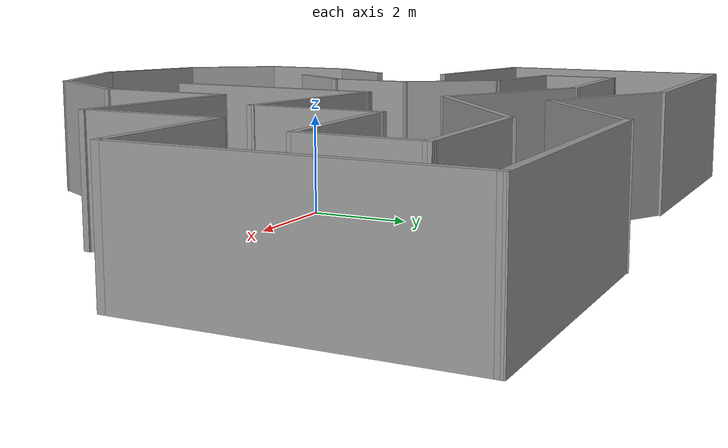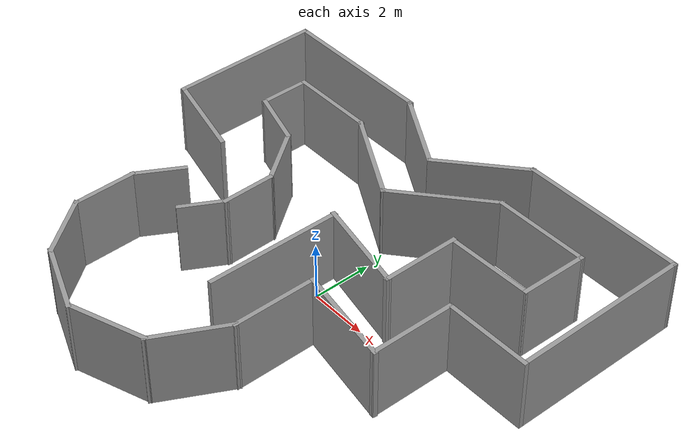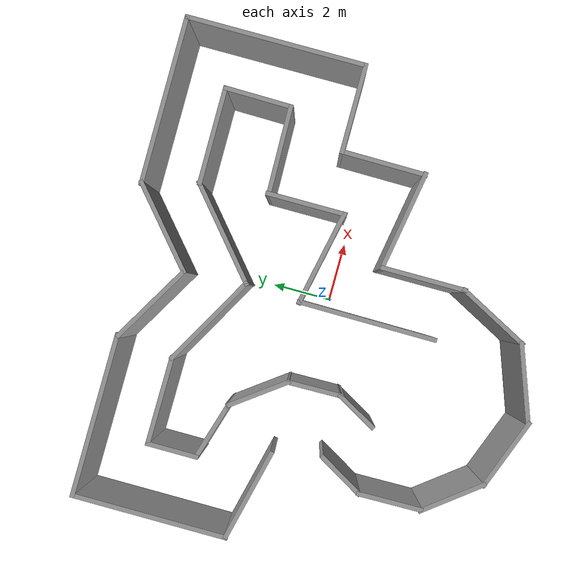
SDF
<?xml version='1.0'?>
<sdf version='1.7'>
  <model name='Muri9b'>
    <pose>-0.280337 -0.102603 0 0 -0 0</pose>
    <link name='Wall_1'>
      <collision name='Wall_1_Collision'>
        <geometry>
          <box>
            <size>2.18637 0.15 2.5</size>
          </box>
        </geometry>
        <pose>0 0 1.25 0 -0 0</pose>
      </collision>
      <visual name='Wall_1_Visual'>
        <pose>0 0 1.25 0 -0 0</pose>
        <geometry>
          <box>
            <size>2.18637 0.15 2.5</size>
          </box>
        </geometry>
        <material>
          <script>
            <uri>file://media/materials/scripts/gazebo.material</uri>
            <name>Gazebo/Grey</name>
          </script>
          <ambient>1 1 1 1</ambient>
        </material>
        <meta>
          <layer>0</layer>
        </meta>
      </visual>
      <pose>-5.42119 -3.36689 0 0 -0 -1.55773</pose>
    </link>
    <link name='Wall_11'>
      <collision name='Wall_11_Collision'>
        <geometry>
          <box>
            <size>3.05203 0.15 2.5</size>
          </box>
        </geometry>
        <pose>0 0 1.25 0 -0 0</pose>
      </collision>
      <visual name='Wall_11_Visual'>
        <pose>0 0 1.25 0 -0 0</pose>
        <geometry>
          <box>
            <size>3.05203 0.15 2.5</size>
          </box>
        </geometry>
        <material>
          <script>
            <uri>file://media/materials/scripts/gazebo.material</uri>
            <name>Gazebo/Grey</name>
          </script>
          <ambient>1 1 1 1</ambient>
        </material>
        <meta>
          <layer>0</layer>
        </meta>
      </visual>
      <pose>6.43623 1.03343 0 0 -0 0</pose>
    </link>
    <link name='Wall_12'>
      <collision name='Wall_12_Collision'>
        <geometry>
          <box>
            <size>6.09323 0.15 2.5</size>
          </box>
        </geometry>
        <pose>0 0 1.25 0 -0 0</pose>
      </collision>
      <visual name='Wall_12_Visual'>
        <pose>0 0 1.25 0 -0 0</pose>
        <geometry>
          <box>
            <size>6.09323 0.15 2.5</size>
          </box>
        </geometry>
        <material>
          <script>
            <uri>file://media/materials/scripts/gazebo.material</uri>
            <name>Gazebo/Grey</name>
          </script>
          <ambient>1 1 1 1</ambient>
        </material>
        <meta>
          <layer>0</layer>
        </meta>
      </visual>
      <pose>7.88719 4.03164 0 0 -0 1.5708</pose>
    </link>
    <link name='Wall_14'>
      <collision name='Wall_14_Collision'>
        <geometry>
          <box>
            <size>5.74746 0.15 2.5</size>
          </box>
        </geometry>
        <pose>0 0 1.25 0 -0 0</pose>
      </collision>
      <visual name='Wall_14_Visual'>
        <pose>0 0 1.25 0 -0 0</pose>
        <geometry>
          <box>
            <size>5.74746 0.15 2.5</size>
          </box>
        </geometry>
        <material>
          <script>
            <uri>file://media/materials/scripts/gazebo.material</uri>
            <name>Gazebo/Grey</name>
          </script>
          <ambient>1 1 1 1</ambient>
        </material>
        <meta>
          <layer>0</layer>
        </meta>
      </visual>
      <pose>5.0885 7.01523 0 0 -0 -3.13637</pose>
    </link>
    <link name='Wall_15'>
      <collision name='Wall_15_Collision'>
        <geometry>
          <box>
            <size>3.32382 0.15 2.5</size>
          </box>
        </geometry>
        <pose>0 0 1.25 0 -0 0</pose>
      </collision>
      <visual name='Wall_15_Visual'>
        <pose>0 0 1.25 0 -0 0</pose>
        <geometry>
          <box>
            <size>3.32382 0.15 2.5</size>
          </box>
        </geometry>
        <material>
          <script>
            <uri>file://media/materials/scripts/gazebo.material</uri>
            <name>Gazebo/Grey</name>
          </script>
          <ambient>1 1 1 1</ambient>
        </material>
        <meta>
          <layer>0</layer>
        </meta>
      </visual>
      <pose>1.11731 5.96576 0 0 -0 -2.43123</pose>
    </link>
    <link name='Wall_16'>
      <collision name='Wall_16_Collision'>
        <geometry>
          <box>
            <size>3.04857 0.15 2.5</size>
          </box>
        </geometry>
        <pose>0 0 1.25 0 -0 0</pose>
      </collision>
      <visual name='Wall_16_Visual'>
        <pose>0 0 1.25 0 -0 0</pose>
        <geometry>
          <box>
            <size>3.04857 0.15 2.5</size>
          </box>
        </geometry>
        <material>
          <script>
            <uri>file://media/materials/scripts/gazebo.material</uri>
            <name>Gazebo/Grey</name>
          </script>
          <ambient>1 1 1 1</ambient>
        </material>
        <meta>
          <layer>0</layer>
        </meta>
      </visual>
      <pose>-1.36811 5.66136 0 0 -0 2.61337</pose>
    </link>
    <link name='Wall_17'>
      <collision name='Wall_17_Collision'>
        <geometry>
          <box>
            <size>5.41771 0.15 2.5</size>
          </box>
        </geometry>
        <pose>0 0 1.25 0 -0 0</pose>
      </collision>
      <visual name='Wall_17_Visual'>
        <pose>0 0 1.25 0 -0 0</pose>
        <geometry>
          <box>
            <size>5.41771 0.15 2.5</size>
          </box>
        </geometry>
        <material>
          <script>
            <uri>file://media/materials/scripts/gazebo.material</uri>
            <name>Gazebo/Grey</name>
          </script>
          <ambient>1 1 1 1</ambient>
        </material>
        <meta>
          <layer>0</layer>
        </meta>
      </visual>
      <pose>-5.25372 6.42238 0 0 -0 -3.14159</pose>
    </link>
    <link name='Wall_2'>
      <collision name='Wall_2_Collision'>
        <geometry>
          <box>
            <size>2.33259 0.15 2.5</size>
          </box>
        </geometry>
        <pose>0 0 1.25 0 -0 0</pose>
      </collision>
      <visual name='Wall_2_Visual'>
        <pose>0 0 1.25 0 -0 0</pose>
        <geometry>
          <box>
            <size>2.33259 0.15 2.5</size>
          </box>
        </geometry>
        <material>
          <script>
            <uri>file://media/materials/scripts/gazebo.material</uri>
            <name>Gazebo/Grey</name>
          </script>
          <ambient>1 1 1 1</ambient>
        </material>
        <meta>
          <layer>0</layer>
        </meta>
      </visual>
      <pose>-4.77249 -5.25257 0 0 -0 -0.918996</pose>
    </link>
    <link name='Wall_20'>
      <collision name='Wall_20_Collision'>
        <geometry>
          <box>
            <size>5.17298 0.15 2.5</size>
          </box>
        </geometry>
        <pose>0 0 1.25 0 -0 0</pose>
      </collision>
      <visual name='Wall_20_Visual'>
        <pose>0 0 1.25 0 -0 0</pose>
        <geometry>
          <box>
            <size>5.17298 0.15 2.5</size>
          </box>
        </geometry>
        <material>
          <script>
            <uri>file://media/materials/scripts/gazebo.material</uri>
            <name>Gazebo/Grey</name>
          </script>
          <ambient>1 1 1 1</ambient>
        </material>
        <meta>
          <layer>0</layer>
        </meta>
      </visual>
      <pose>-7.88758 3.8803 0 0 -0 -1.5708</pose>
    </link>
    <link name='Wall_21'>
      <collision name='Wall_21_Collision'>
        <geometry>
          <box>
            <size>3.14294 0.15 2.5</size>
          </box>
        </geometry>
        <pose>0 0 1.25 0 -0 0</pose>
      </collision>
      <visual name='Wall_21_Visual'>
        <pose>0 0 1.25 0 -0 0</pose>
        <geometry>
          <box>
            <size>3.14294 0.15 2.5</size>
          </box>
        </geometry>
        <material>
          <script>
            <uri>file://media/materials/scripts/gazebo.material</uri>
            <name>Gazebo/Grey</name>
          </script>
          <ambient>1 1 1 1</ambient>
        </material>
        <meta>
          <layer>0</layer>
        </meta>
      </visual>
      <pose>-6.40245 1.01705 0 0 -0 -0.23728</pose>
    </link>
    <link name='Wall_23'>
      <collision name='Wall_23_Collision'>
        <geometry>
          <box>
            <size>4.65306 0.15 2.5</size>
          </box>
        </geometry>
        <pose>0 0 1.25 0 -0 0</pose>
      </collision>
      <visual name='Wall_23_Visual'>
        <pose>0 0 1.25 0 -0 0</pose>
        <geometry>
          <box>
            <size>4.65306 0.15 2.5</size>
          </box>
        </geometry>
        <material>
          <script>
            <uri>file://media/materials/scripts/gazebo.material</uri>
            <name>Gazebo/Grey</name>
          </script>
          <ambient>1 1 1 1</ambient>
        </material>
        <meta>
          <layer>0</layer>
        </meta>
      </visual>
      <pose>-0.065618 -1.16403 0 0 -0 1.564</pose>
    </link>
    <link name='Wall_24'>
      <collision name='Wall_24_Collision'>
        <geometry>
          <box>
            <size>3.34212 0.15 2.5</size>
          </box>
        </geometry>
        <pose>0 0 1.25 0 -0 0</pose>
      </collision>
      <visual name='Wall_24_Visual'>
        <pose>0 0 1.25 0 -0 0</pose>
        <geometry>
          <box>
            <size>3.34212 0.15 2.5</size>
          </box>
        </geometry>
        <material>
          <script>
            <uri>file://media/materials/scripts/gazebo.material</uri>
            <name>Gazebo/Grey</name>
          </script>
          <ambient>1 1 1 1</ambient>
        </material>
        <meta>
          <layer>0</layer>
        </meta>
      </visual>
      <pose>1.48581 0.762982 0 0 -0 -0.204716</pose>
    </link>
    <link name='Wall_25'>
      <collision name='Wall_25_Collision'>
        <geometry>
          <box>
            <size>2.72469 0.15 2.5</size>
          </box>
        </geometry>
        <pose>0 0 1.25 0 -0 0</pose>
      </collision>
      <visual name='Wall_25_Visual'>
        <pose>0 0 1.25 0 -0 0</pose>
        <geometry>
          <box>
            <size>2.72469 0.15 2.5</size>
          </box>
        </geometry>
        <material>
          <script>
            <uri>file://media/materials/scripts/gazebo.material</uri>
            <name>Gazebo/Grey</name>
          </script>
          <ambient>1 1 1 1</ambient>
        </material>
        <meta>
          <layer>0</layer>
        </meta>
      </visual>
      <pose>3.04854 1.69527 0 0 -0 1.5708</pose>
    </link>
    <link name='Wall_26'>
      <collision name='Wall_26_Collision'>
        <geometry>
          <box>
            <size>3.05135 0.15 2.5</size>
          </box>
        </geometry>
        <pose>0 0 1.25 0 -0 0</pose>
      </collision>
      <visual name='Wall_26_Visual'>
        <pose>0 0 1.25 0 -0 0</pose>
        <geometry>
          <box>
            <size>3.05135 0.15 2.5</size>
          </box>
        </geometry>
        <material>
          <script>
            <uri>file://media/materials/scripts/gazebo.material</uri>
            <name>Gazebo/Grey</name>
          </script>
          <ambient>1 1 1 1</ambient>
        </material>
        <meta>
          <layer>0</layer>
        </meta>
      </visual>
      <pose>4.49889 2.98262 0 0 -0 0.021088</pose>
    </link>
    <link name='Wall_27'>
      <collision name='Wall_27_Collision'>
        <geometry>
          <box>
            <size>2.345 0.15 2.5</size>
          </box>
        </geometry>
        <pose>0 0 1.25 0 -0 0</pose>
      </collision>
      <visual name='Wall_27_Visual'>
        <pose>0 0 1.25 0 -0 0</pose>
        <geometry>
          <box>
            <size>2.345 0.15 2.5</size>
          </box>
        </geometry>
        <material>
          <script>
            <uri>file://media/materials/scripts/gazebo.material</uri>
            <name>Gazebo/Grey</name>
          </script>
          <ambient>1 1 1 1</ambient>
        </material>
        <meta>
          <layer>0</layer>
        </meta>
      </visual>
      <pose>5.96527 4.11059 0 0 -0 1.55619</pose>
    </link>
    <link name='Wall_28'>
      <collision name='Wall_28_Collision'>
        <geometry>
          <box>
            <size>3.33042 0.15 2.5</size>
          </box>
        </geometry>
        <pose>0 0 1.25 0 -0 0</pose>
      </collision>
      <visual name='Wall_28_Visual'>
        <pose>0 0 1.25 0 -0 0</pose>
        <geometry>
          <box>
            <size>3.33042 0.15 2.5</size>
          </box>
        </geometry>
        <material>
          <script>
            <uri>file://media/materials/scripts/gazebo.material</uri>
            <name>Gazebo/Grey</name>
          </script>
          <ambient>1 1 1 1</ambient>
        </material>
        <meta>
          <layer>0</layer>
        </meta>
      </visual>
      <pose>4.39121 5.19818 0 0 -0 -3.13543</pose>
    </link>
    <link name='Wall_29'>
      <collision name='Wall_29_Collision'>
        <geometry>
          <box>
            <size>3.73507 0.15 2.5</size>
          </box>
        </geometry>
        <pose>0 0 1.25 0 -0 0</pose>
      </collision>
      <visual name='Wall_29_Visual'>
        <pose>0 0 1.25 0 -0 0</pose>
        <geometry>
          <box>
            <size>3.73507 0.15 2.5</size>
          </box>
        </geometry>
        <material>
          <script>
            <uri>file://media/materials/scripts/gazebo.material</uri>
            <name>Gazebo/Grey</name>
          </script>
          <ambient>1 1 1 1</ambient>
        </material>
        <meta>
          <layer>0</layer>
        </meta>
      </visual>
      <pose>1.43531 4.04759 0 0 -0 -2.43712</pose>
    </link>
    <link name='Wall_3'>
      <collision name='Wall_3_Collision'>
        <geometry>
          <box>
            <size>2.58966 0.15 2.5</size>
          </box>
        </geometry>
        <pose>0 0 1.25 0 -0 0</pose>
      </collision>
      <visual name='Wall_3_Visual'>
        <pose>0 0 1.25 0 -0 0</pose>
        <geometry>
          <box>
            <size>2.58966 0.15 2.5</size>
          </box>
        </geometry>
        <material>
          <script>
            <uri>file://media/materials/scripts/gazebo.material</uri>
            <name>Gazebo/Grey</name>
          </script>
          <ambient>1 1 1 1</ambient>
        </material>
        <meta>
          <layer>0</layer>
        </meta>
      </visual>
      <pose>-3.00114 -6.56466 0 0 -0 -0.373004</pose>
    </link>
    <link name='Wall_30'>
      <collision name='Wall_30_Collision'>
        <geometry>
          <box>
            <size>3.51228 0.15 2.5</size>
          </box>
        </geometry>
        <pose>0 0 1.25 0 -0 0</pose>
      </collision>
      <visual name='Wall_30_Visual'>
        <pose>0 0 1.25 0 -0 0</pose>
        <geometry>
          <box>
            <size>3.51228 0.15 2.5</size>
          </box>
        </geometry>
        <material>
          <script>
            <uri>file://media/materials/scripts/gazebo.material</uri>
            <name>Gazebo/Grey</name>
          </script>
          <ambient>1 1 1 1</ambient>
        </material>
        <meta>
          <layer>0</layer>
        </meta>
      </visual>
      <pose>-1.39441 3.71327 0 0 -0 2.62757</pose>
    </link>
    <link name='Wall_33'>
      <collision name='Wall_33_Collision'>
        <geometry>
          <box>
            <size>1.75 0.15 2.5</size>
          </box>
        </geometry>
        <pose>0 0 1.25 0 -0 0</pose>
      </collision>
      <visual name='Wall_33_Visual'>
        <pose>0 0 1.25 0 -0 0</pose>
        <geometry>
          <box>
            <size>1.75 0.15 2.5</size>
          </box>
        </geometry>
        <material>
          <script>
            <uri>file://media/materials/scripts/gazebo.material</uri>
            <name>Gazebo/Grey</name>
          </script>
          <ambient>1 1 1 1</ambient>
        </material>
        <meta>
          <layer>0</layer>
        </meta>
      </visual>
      <pose>-5.03449 -1.65597 0 0 -0 1.0472</pose>
    </link>
    <link name='Wall_35'>
      <collision name='Wall_35_Collision'>
        <geometry>
          <box>
            <size>2.95752 0.15 2.5</size>
          </box>
        </geometry>
        <pose>0 0 1.25 0 -0 0</pose>
      </collision>
      <visual name='Wall_35_Visual'>
        <pose>0 0 1.25 0 -0 0</pose>
        <geometry>
          <box>
            <size>2.95752 0.15 2.5</size>
          </box>
        </geometry>
        <material>
          <script>
            <uri>file://media/materials/scripts/gazebo.material</uri>
            <name>Gazebo/Grey</name>
          </script>
          <ambient>1 1 1 1</ambient>
        </material>
        <meta>
          <layer>0</layer>
        </meta>
      </visual>
      <pose>-4.26205 4.5456 0 0 -0 3.1375</pose>
    </link>
    <link name='Wall_37'>
      <collision name='Wall_37_Collision'>
        <geometry>
          <box>
            <size>1.75 0.15 2.5</size>
          </box>
        </geometry>
        <pose>0 0 1.25 0 -0 0</pose>
      </collision>
      <visual name='Wall_37_Visual'>
        <pose>0 0 1.25 0 -0 0</pose>
        <geometry>
          <box>
            <size>1.75 0.15 2.5</size>
          </box>
        </geometry>
        <material>
          <script>
            <uri>file://media/materials/scripts/gazebo.material</uri>
            <name>Gazebo/Grey</name>
          </script>
          <ambient>1 1 1 1</ambient>
        </material>
        <meta>
          <layer>0</layer>
        </meta>
      </visual>
      <pose>-5.6773 3.75135 0 0 -0 -1.5708</pose>
    </link>
    <link name='Wall_38'>
      <collision name='Wall_38_Collision'>
        <geometry>
          <box>
            <size>2.05206 0.15 2.5</size>
          </box>
        </geometry>
        <pose>0 0 1.25 0 -0 0</pose>
      </collision>
      <visual name='Wall_38_Visual'>
        <pose>0 0 1.25 0 -0 0</pose>
        <geometry>
          <box>
            <size>2.05206 0.15 2.5</size>
          </box>
        </geometry>
        <material>
          <script>
            <uri>file://media/materials/scripts/gazebo.material</uri>
            <name>Gazebo/Grey</name>
          </script>
          <ambient>1 1 1 1</ambient>
        </material>
        <meta>
          <layer>0</layer>
        </meta>
      </visual>
      <pose>-4.75507 2.67744 0 0 -0 -0.29215</pose>
    </link>
    <link name='Wall_39'>
      <collision name='Wall_39_Collision'>
        <geometry>
          <box>
            <size>2.20376 0.15 2.5</size>
          </box>
        </geometry>
        <pose>0 0 1.25 0 -0 0</pose>
      </collision>
      <visual name='Wall_39_Visual'>
        <pose>0 0 1.25 0 -0 0</pose>
        <geometry>
          <box>
            <size>2.20376 0.15 2.5</size>
          </box>
        </geometry>
        <material>
          <script>
            <uri>file://media/materials/scripts/gazebo.material</uri>
            <name>Gazebo/Grey</name>
          </script>
          <ambient>1 1 1 1</ambient>
        </material>
        <meta>
          <layer>0</layer>
        </meta>
      </visual>
      <pose>-3.22373 1.57682 0 0 -0 -0.935809</pose>
    </link>
    <link name='Wall_4'>
      <collision name='Wall_4_Collision'>
        <geometry>
          <box>
            <size>2.69373 0.15 2.5</size>
          </box>
        </geometry>
        <pose>0 0 1.25 0 -0 0</pose>
      </collision>
      <visual name='Wall_4_Visual'>
        <pose>0 0 1.25 0 -0 0</pose>
        <geometry>
          <box>
            <size>2.69373 0.15 2.5</size>
          </box>
        </geometry>
        <material>
          <script>
            <uri>file://media/materials/scripts/gazebo.material</uri>
            <name>Gazebo/Grey</name>
          </script>
          <ambient>1 1 1 1</ambient>
        </material>
        <meta>
          <layer>0</layer>
        </meta>
      </visual>
      <pose>-0.666091 -6.55854 0 0 -0 0.339913</pose>
    </link>
    <link name='Wall_40'>
      <collision name='Wall_40_Collision'>
        <geometry>
          <box>
            <size>1.87368 0.15 2.5</size>
          </box>
        </geometry>
        <pose>0 0 1.25 0 -0 0</pose>
      </collision>
      <visual name='Wall_40_Visual'>
        <pose>0 0 1.25 0 -0 0</pose>
        <geometry>
          <box>
            <size>1.87368 0.15 2.5</size>
          </box>
        </geometry>
        <material>
          <script>
            <uri>file://media/materials/scripts/gazebo.material</uri>
            <name>Gazebo/Grey</name>
          </script>
          <ambient>1 1 1 1</ambient>
        </material>
        <meta>
          <layer>0</layer>
        </meta>
      </visual>
      <pose>-2.60312 -0.134791 0 0 -0 -1.55745</pose>
    </link>
    <link name='Wall_43'>
      <collision name='Wall_43_Collision'>
        <geometry>
          <box>
            <size>1.57174 0.15 2.5</size>
          </box>
        </geometry>
        <pose>0 0 1.25 0 -0 0</pose>
      </collision>
      <visual name='Wall_43_Visual'>
        <pose>0 0 1.25 0 -0 0</pose>
        <geometry>
          <box>
            <size>1.57174 0.15 2.5</size>
          </box>
        </geometry>
        <material>
          <script>
            <uri>file://media/materials/scripts/gazebo.material</uri>
            <name>Gazebo/Grey</name>
          </script>
          <ambient>1 1 1 1</ambient>
        </material>
        <meta>
          <layer>0</layer>
        </meta>
      </visual>
      <pose>-2.94069 -1.59268 0 0 -0 -2.08408</pose>
    </link>
    <link name='Wall_5'>
      <collision name='Wall_5_Collision'>
        <geometry>
          <box>
            <size>2.67197 0.15 2.5</size>
          </box>
        </geometry>
        <pose>0 0 1.25 0 -0 0</pose>
      </collision>
      <visual name='Wall_5_Visual'>
        <pose>0 0 1.25 0 -0 0</pose>
        <geometry>
          <box>
            <size>2.67197 0.15 2.5</size>
          </box>
        </geometry>
        <material>
          <script>
            <uri>file://media/materials/scripts/gazebo.material</uri>
            <name>Gazebo/Grey</name>
          </script>
          <ambient>1 1 1 1</ambient>
        </material>
        <meta>
          <layer>0</layer>
        </meta>
      </visual>
      <pose>1.12193 -5.04608 0 0 -0 1.08486</pose>
    </link>
    <link name='Wall_6'>
      <collision name='Wall_6_Collision'>
        <geometry>
          <box>
            <size>2.88952 0.15 2.5</size>
          </box>
        </geometry>
        <pose>0 0 1.25 0 -0 0</pose>
      </collision>
      <visual name='Wall_6_Visual'>
        <pose>0 0 1.25 0 -0 0</pose>
        <geometry>
          <box>
            <size>2.88952 0.15 2.5</size>
          </box>
        </geometry>
        <material>
          <script>
            <uri>file://media/materials/scripts/gazebo.material</uri>
            <name>Gazebo/Grey</name>
          </script>
          <ambient>1 1 1 1</ambient>
        </material>
        <meta>
          <layer>0</layer>
        </meta>
      </visual>
      <pose>1.71085 -2.58791 0 0 -0 1.5708</pose>
    </link>
    <link name='Wall_7'>
      <collision name='Wall_7_Collision'>
        <geometry>
          <box>
            <size>3.47609 0.15 2.5</size>
          </box>
        </geometry>
        <pose>0 0 1.25 0 -0 0</pose>
      </collision>
      <visual name='Wall_7_Visual'>
        <pose>0 0 1.25 0 -0 0</pose>
        <geometry>
          <box>
            <size>3.47609 0.15 2.5</size>
          </box>
        </geometry>
        <material>
          <script>
            <uri>file://media/materials/scripts/gazebo.material</uri>
            <name>Gazebo/Grey</name>
          </script>
          <ambient>1 1 1 1</ambient>
        </material>
        <meta>
          <layer>0</layer>
        </meta>
      </visual>
      <pose>3.35006 -1.47212 0 0 -0 -0.16952</pose>
    </link>
    <link name='Wall_8'>
      <collision name='Wall_8_Collision'>
        <geometry>
          <box>
            <size>2.91011 0.15 2.5</size>
          </box>
        </geometry>
        <pose>0 0 1.25 0 -0 0</pose>
      </collision>
      <visual name='Wall_8_Visual'>
        <pose>0 0 1.25 0 -0 0</pose>
        <geometry>
          <box>
            <size>2.91011 0.15 2.5</size>
          </box>
        </geometry>
        <material>
          <script>
            <uri>file://media/materials/scripts/gazebo.material</uri>
            <name>Gazebo/Grey</name>
          </script>
          <ambient>1 1 1 1</ambient>
        </material>
        <meta>
          <layer>0</layer>
        </meta>
      </visual>
      <pose>4.97397 -0.372929 0 0 -0 1.5626</pose>
    </link>
    <static>1</static>
  </model>
</sdf>
